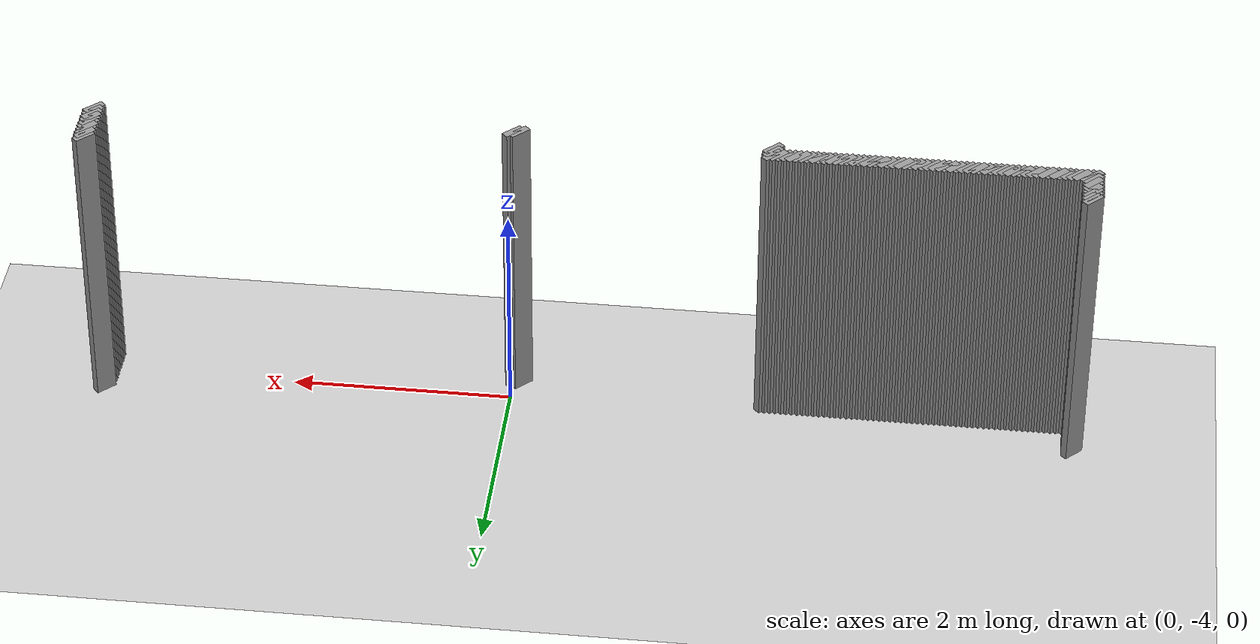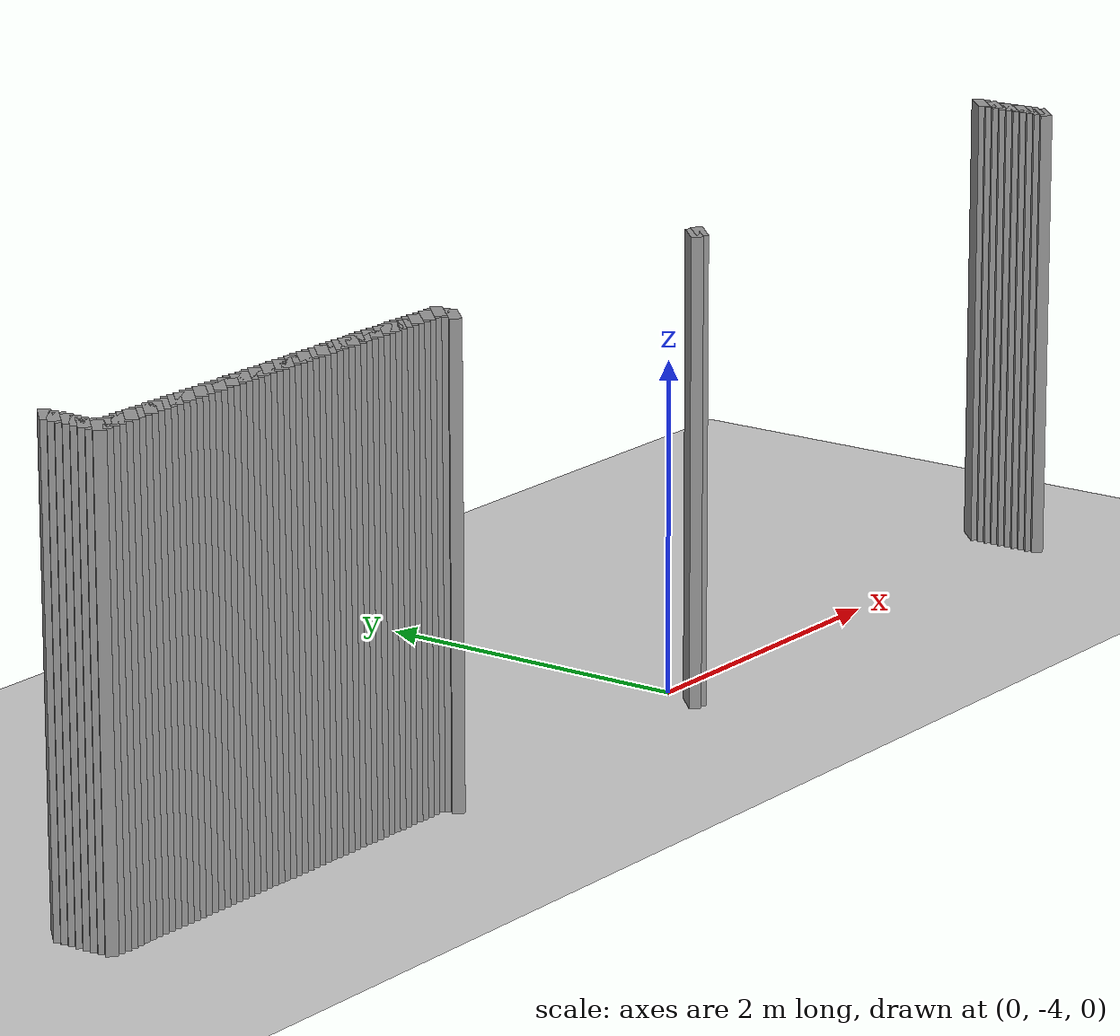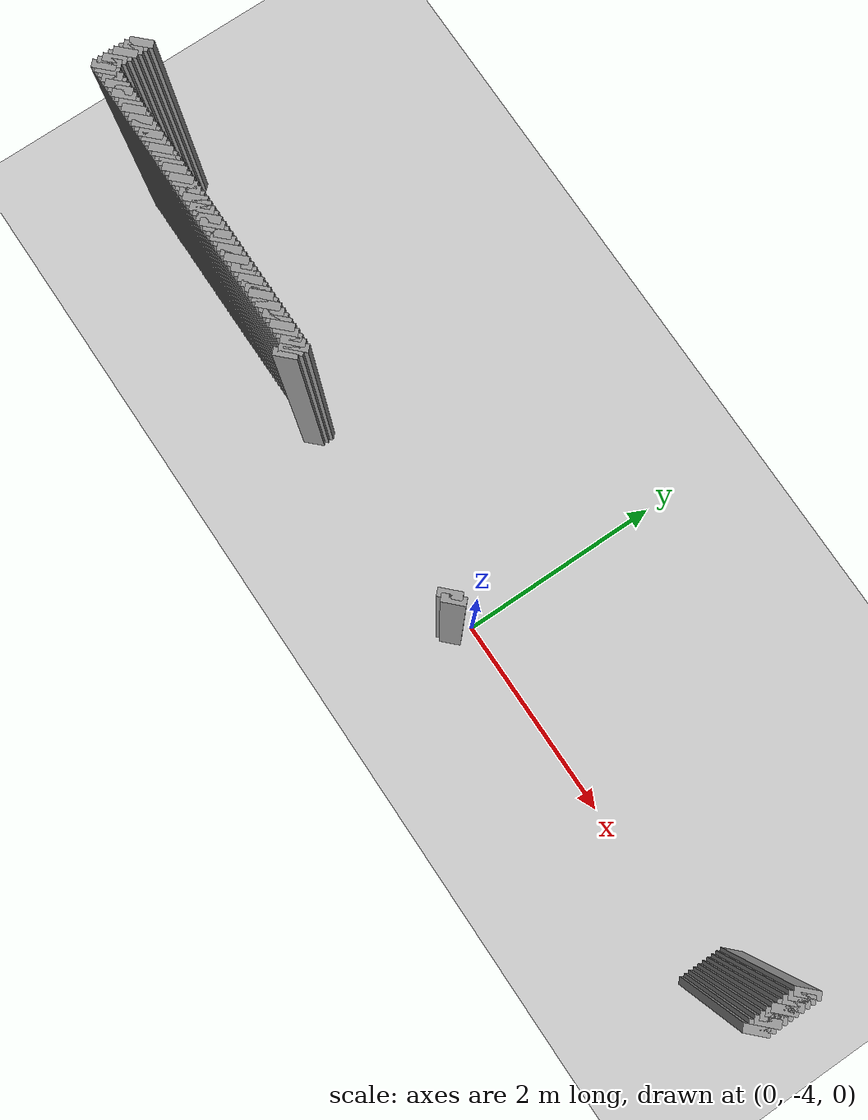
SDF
<sdf version="1.5">
 <world name="default">
  <include><uri>model://ground_plane</uri></include>
  <include><uri>model://sun</uri></include>
  <model name="grey_wall_1178">
   <static>1</static>
   <link name="link">
    <pose>3.725 -3.725  1.4 0 0 -0.785398163397</pose>
    <collision name="collision"><geometry><box><size>0.0707106781187 .2  2.8</size></box></geometry></collision>
    <visual name="visual">
     <cast_shadows>0</cast_shadows>
     <geometry><box><size>0.0707106781187 .2  2.8</size></box></geometry>
     <material>
      <script>
       <uri>model://grey_wall/materials/scripts</uri>
       <uri>model://grey_wall/materials/textures</uri>
       <name>vrc/grey_wall</name>
      </script>
     </material>
    </visual>
   </link>
  </model>
  <model name="grey_wall_1179">
   <static>1</static>
   <link name="link">
    <pose>-5.125 -3.775  1.4 0 0 -0.785398163397</pose>
    <collision name="collision"><geometry><box><size>0.0707106781187 .2  2.8</size></box></geometry></collision>
    <visual name="visual">
     <cast_shadows>0</cast_shadows>
     <geometry><box><size>0.0707106781187 .2  2.8</size></box></geometry>
     <material>
      <script>
       <uri>model://grey_wall/materials/scripts</uri>
       <uri>model://grey_wall/materials/textures</uri>
       <name>vrc/grey_wall</name>
      </script>
     </material>
    </visual>
   </link>
  </model>
  <model name="grey_wall_1180">
   <static>1</static>
   <link name="link">
    <pose>3.725 -3.775  1.4 0 0 -0.785398163397</pose>
    <collision name="collision"><geometry><box><size>0.0707106781187 .2  2.8</size></box></geometry></collision>
    <visual name="visual">
     <cast_shadows>0</cast_shadows>
     <geometry><box><size>0.0707106781187 .2  2.8</size></box></geometry>
     <material>
      <script>
       <uri>model://grey_wall/materials/scripts</uri>
       <uri>model://grey_wall/materials/textures</uri>
       <name>vrc/grey_wall</name>
      </script>
     </material>
    </visual>
   </link>
  </model>
  <model name="grey_wall_1181">
   <static>1</static>
   <link name="link">
    <pose>-5.125 -3.825  1.4 0 0 -0.785398163397</pose>
    <collision name="collision"><geometry><box><size>0.0707106781187 .2  2.8</size></box></geometry></collision>
    <visual name="visual">
     <cast_shadows>0</cast_shadows>
     <geometry><box><size>0.0707106781187 .2  2.8</size></box></geometry>
     <material>
      <script>
       <uri>model://grey_wall/materials/scripts</uri>
       <uri>model://grey_wall/materials/textures</uri>
       <name>vrc/grey_wall</name>
      </script>
     </material>
    </visual>
   </link>
  </model>
  <model name="grey_wall_1182">
   <static>1</static>
   <link name="link">
    <pose>3.725 -3.825  1.4 0 0 -0.785398163397</pose>
    <collision name="collision"><geometry><box><size>0.0707106781187 .2  2.8</size></box></geometry></collision>
    <visual name="visual">
     <cast_shadows>0</cast_shadows>
     <geometry><box><size>0.0707106781187 .2  2.8</size></box></geometry>
     <material>
      <script>
       <uri>model://grey_wall/materials/scripts</uri>
       <uri>model://grey_wall/materials/textures</uri>
       <name>vrc/grey_wall</name>
      </script>
     </material>
    </visual>
   </link>
  </model>
  <model name="grey_wall_1183">
   <static>1</static>
   <link name="link">
    <pose>-5.125 -3.875  1.4 0 0 -0.785398163397</pose>
    <collision name="collision"><geometry><box><size>0.0707106781187 .2  2.8</size></box></geometry></collision>
    <visual name="visual">
     <cast_shadows>0</cast_shadows>
     <geometry><box><size>0.0707106781187 .2  2.8</size></box></geometry>
     <material>
      <script>
       <uri>model://grey_wall/materials/scripts</uri>
       <uri>model://grey_wall/materials/textures</uri>
       <name>vrc/grey_wall</name>
      </script>
     </material>
    </visual>
   </link>
  </model>
  <model name="grey_wall_1184">
   <static>1</static>
   <link name="link">
    <pose>3.725 -3.875  1.4 0 0 -0.785398163397</pose>
    <collision name="collision"><geometry><box><size>0.0707106781187 .2  2.8</size></box></geometry></collision>
    <visual name="visual">
     <cast_shadows>0</cast_shadows>
     <geometry><box><size>0.0707106781187 .2  2.8</size></box></geometry>
     <material>
      <script>
       <uri>model://grey_wall/materials/scripts</uri>
       <uri>model://grey_wall/materials/textures</uri>
       <name>vrc/grey_wall</name>
      </script>
     </material>
    </visual>
   </link>
  </model>
  <model name="grey_wall_1185">
   <static>1</static>
   <link name="link">
    <pose>-5.125 -3.925  1.4 0 0 -0.785398163397</pose>
    <collision name="collision"><geometry><box><size>0.0707106781187 .2  2.8</size></box></geometry></collision>
    <visual name="visual">
     <cast_shadows>0</cast_shadows>
     <geometry><box><size>0.0707106781187 .2  2.8</size></box></geometry>
     <material>
      <script>
       <uri>model://grey_wall/materials/scripts</uri>
       <uri>model://grey_wall/materials/textures</uri>
       <name>vrc/grey_wall</name>
      </script>
     </material>
    </visual>
   </link>
  </model>
  <model name="grey_wall_1186">
   <static>1</static>
   <link name="link">
    <pose>3.725 -3.925  1.4 0 0 -0.785398163397</pose>
    <collision name="collision"><geometry><box><size>0.0707106781187 .2  2.8</size></box></geometry></collision>
    <visual name="visual">
     <cast_shadows>0</cast_shadows>
     <geometry><box><size>0.0707106781187 .2  2.8</size></box></geometry>
     <material>
      <script>
       <uri>model://grey_wall/materials/scripts</uri>
       <uri>model://grey_wall/materials/textures</uri>
       <name>vrc/grey_wall</name>
      </script>
     </material>
    </visual>
   </link>
  </model>
  <model name="grey_wall_1187">
   <static>1</static>
   <link name="link">
    <pose>-5.125 -3.975  1.4 0 0 -0.785398163397</pose>
    <collision name="collision"><geometry><box><size>0.0707106781187 .2  2.8</size></box></geometry></collision>
    <visual name="visual">
     <cast_shadows>0</cast_shadows>
     <geometry><box><size>0.0707106781187 .2  2.8</size></box></geometry>
     <material>
      <script>
       <uri>model://grey_wall/materials/scripts</uri>
       <uri>model://grey_wall/materials/textures</uri>
       <name>vrc/grey_wall</name>
      </script>
     </material>
    </visual>
   </link>
  </model>
  <model name="grey_wall_1188">
   <static>1</static>
   <link name="link">
    <pose>3.725 -3.975  1.4 0 0 -0.785398163397</pose>
    <collision name="collision"><geometry><box><size>0.0707106781187 .2  2.8</size></box></geometry></collision>
    <visual name="visual">
     <cast_shadows>0</cast_shadows>
     <geometry><box><size>0.0707106781187 .2  2.8</size></box></geometry>
     <material>
      <script>
       <uri>model://grey_wall/materials/scripts</uri>
       <uri>model://grey_wall/materials/textures</uri>
       <name>vrc/grey_wall</name>
      </script>
     </material>
    </visual>
   </link>
  </model>
  <model name="grey_wall_1189">
   <static>1</static>
   <link name="link">
    <pose>-5.125 -4.025  1.4 0 0 -0.785398163397</pose>
    <collision name="collision"><geometry><box><size>0.0707106781187 .2  2.8</size></box></geometry></collision>
    <visual name="visual">
     <cast_shadows>0</cast_shadows>
     <geometry><box><size>0.0707106781187 .2  2.8</size></box></geometry>
     <material>
      <script>
       <uri>model://grey_wall/materials/scripts</uri>
       <uri>model://grey_wall/materials/textures</uri>
       <name>vrc/grey_wall</name>
      </script>
     </material>
    </visual>
   </link>
  </model>
  <model name="grey_wall_1190">
   <static>1</static>
   <link name="link">
    <pose>3.725 -4.025  1.4 0 0 -0.785398163397</pose>
    <collision name="collision"><geometry><box><size>0.0707106781187 .2  2.8</size></box></geometry></collision>
    <visual name="visual">
     <cast_shadows>0</cast_shadows>
     <geometry><box><size>0.0707106781187 .2  2.8</size></box></geometry>
     <material>
      <script>
       <uri>model://grey_wall/materials/scripts</uri>
       <uri>model://grey_wall/materials/textures</uri>
       <name>vrc/grey_wall</name>
      </script>
     </material>
    </visual>
   </link>
  </model>
  <model name="grey_wall_1191">
   <static>1</static>
   <link name="link">
    <pose>-5.125 -4.075  1.4 0 0 -0.785398163397</pose>
    <collision name="collision"><geometry><box><size>0.0707106781187 .2  2.8</size></box></geometry></collision>
    <visual name="visual">
     <cast_shadows>0</cast_shadows>
     <geometry><box><size>0.0707106781187 .2  2.8</size></box></geometry>
     <material>
      <script>
       <uri>model://grey_wall/materials/scripts</uri>
       <uri>model://grey_wall/materials/textures</uri>
       <name>vrc/grey_wall</name>
      </script>
     </material>
    </visual>
   </link>
  </model>
  <model name="grey_wall_1192">
   <static>1</static>
   <link name="link">
    <pose>3.725 -4.075  1.4 0 0 -0.785398163397</pose>
    <collision name="collision"><geometry><box><size>0.0707106781187 .2  2.8</size></box></geometry></collision>
    <visual name="visual">
     <cast_shadows>0</cast_shadows>
     <geometry><box><size>0.0707106781187 .2  2.8</size></box></geometry>
     <material>
      <script>
       <uri>model://grey_wall/materials/scripts</uri>
       <uri>model://grey_wall/materials/textures</uri>
       <name>vrc/grey_wall</name>
      </script>
     </material>
    </visual>
   </link>
  </model>
  <model name="grey_wall_1193">
   <static>1</static>
   <link name="link">
    <pose>-5.125 -4.125  1.4 0 0 -0.785398163397</pose>
    <collision name="collision"><geometry><box><size>0.0707106781187 .2  2.8</size></box></geometry></collision>
    <visual name="visual">
     <cast_shadows>0</cast_shadows>
     <geometry><box><size>0.0707106781187 .2  2.8</size></box></geometry>
     <material>
      <script>
       <uri>model://grey_wall/materials/scripts</uri>
       <uri>model://grey_wall/materials/textures</uri>
       <name>vrc/grey_wall</name>
      </script>
     </material>
    </visual>
   </link>
  </model>
  <model name="grey_wall_1194">
   <static>1</static>
   <link name="link">
    <pose>-5.075 -4.125  1.4 0 0 -0.785398163397</pose>
    <collision name="collision"><geometry><box><size>0.0707106781187 .2  2.8</size></box></geometry></collision>
    <visual name="visual">
     <cast_shadows>0</cast_shadows>
     <geometry><box><size>0.0707106781187 .2  2.8</size></box></geometry>
     <material>
      <script>
       <uri>model://grey_wall/materials/scripts</uri>
       <uri>model://grey_wall/materials/textures</uri>
       <name>vrc/grey_wall</name>
      </script>
     </material>
    </visual>
   </link>
  </model>
  <model name="grey_wall_1195">
   <static>1</static>
   <link name="link">
    <pose>-5.025 -4.125  1.4 0 0 -0.785398163397</pose>
    <collision name="collision"><geometry><box><size>0.0707106781187 .2  2.8</size></box></geometry></collision>
    <visual name="visual">
     <cast_shadows>0</cast_shadows>
     <geometry><box><size>0.0707106781187 .2  2.8</size></box></geometry>
     <material>
      <script>
       <uri>model://grey_wall/materials/scripts</uri>
       <uri>model://grey_wall/materials/textures</uri>
       <name>vrc/grey_wall</name>
      </script>
     </material>
    </visual>
   </link>
  </model>
  <model name="grey_wall_1196">
   <static>1</static>
   <link name="link">
    <pose>-4.975 -4.125  1.4 0 0 -0.785398163397</pose>
    <collision name="collision"><geometry><box><size>0.0707106781187 .2  2.8</size></box></geometry></collision>
    <visual name="visual">
     <cast_shadows>0</cast_shadows>
     <geometry><box><size>0.0707106781187 .2  2.8</size></box></geometry>
     <material>
      <script>
       <uri>model://grey_wall/materials/scripts</uri>
       <uri>model://grey_wall/materials/textures</uri>
       <name>vrc/grey_wall</name>
      </script>
     </material>
    </visual>
   </link>
  </model>
  <model name="grey_wall_1197">
   <static>1</static>
   <link name="link">
    <pose>-4.925 -4.125  1.4 0 0 -0.785398163397</pose>
    <collision name="collision"><geometry><box><size>0.0707106781187 .2  2.8</size></box></geometry></collision>
    <visual name="visual">
     <cast_shadows>0</cast_shadows>
     <geometry><box><size>0.0707106781187 .2  2.8</size></box></geometry>
     <material>
      <script>
       <uri>model://grey_wall/materials/scripts</uri>
       <uri>model://grey_wall/materials/textures</uri>
       <name>vrc/grey_wall</name>
      </script>
     </material>
    </visual>
   </link>
  </model>
  <model name="grey_wall_1198">
   <static>1</static>
   <link name="link">
    <pose>-4.875 -4.125  1.4 0 0 -0.785398163397</pose>
    <collision name="collision"><geometry><box><size>0.0707106781187 .2  2.8</size></box></geometry></collision>
    <visual name="visual">
     <cast_shadows>0</cast_shadows>
     <geometry><box><size>0.0707106781187 .2  2.8</size></box></geometry>
     <material>
      <script>
       <uri>model://grey_wall/materials/scripts</uri>
       <uri>model://grey_wall/materials/textures</uri>
       <name>vrc/grey_wall</name>
      </script>
     </material>
    </visual>
   </link>
  </model>
  <model name="grey_wall_1199">
   <static>1</static>
   <link name="link">
    <pose>-4.825 -4.125  1.4 0 0 -0.785398163397</pose>
    <collision name="collision"><geometry><box><size>0.0707106781187 .2  2.8</size></box></geometry></collision>
    <visual name="visual">
     <cast_shadows>0</cast_shadows>
     <geometry><box><size>0.0707106781187 .2  2.8</size></box></geometry>
     <material>
      <script>
       <uri>model://grey_wall/materials/scripts</uri>
       <uri>model://grey_wall/materials/textures</uri>
       <name>vrc/grey_wall</name>
      </script>
     </material>
    </visual>
   </link>
  </model>
  <model name="grey_wall_1200">
   <static>1</static>
   <link name="link">
    <pose>-4.775 -4.125  1.4 0 0 -0.785398163397</pose>
    <collision name="collision"><geometry><box><size>0.0707106781187 .2  2.8</size></box></geometry></collision>
    <visual name="visual">
     <cast_shadows>0</cast_shadows>
     <geometry><box><size>0.0707106781187 .2  2.8</size></box></geometry>
     <material>
      <script>
       <uri>model://grey_wall/materials/scripts</uri>
       <uri>model://grey_wall/materials/textures</uri>
       <name>vrc/grey_wall</name>
      </script>
     </material>
    </visual>
   </link>
  </model>
  <model name="grey_wall_1201">
   <static>1</static>
   <link name="link">
    <pose>-4.725 -4.125  1.4 0 0 -0.785398163397</pose>
    <collision name="collision"><geometry><box><size>0.0707106781187 .2  2.8</size></box></geometry></collision>
    <visual name="visual">
     <cast_shadows>0</cast_shadows>
     <geometry><box><size>0.0707106781187 .2  2.8</size></box></geometry>
     <material>
      <script>
       <uri>model://grey_wall/materials/scripts</uri>
       <uri>model://grey_wall/materials/textures</uri>
       <name>vrc/grey_wall</name>
      </script>
     </material>
    </visual>
   </link>
  </model>
  <model name="grey_wall_1202">
   <static>1</static>
   <link name="link">
    <pose>-4.675 -4.125  1.4 0 0 -0.785398163397</pose>
    <collision name="collision"><geometry><box><size>0.0707106781187 .2  2.8</size></box></geometry></collision>
    <visual name="visual">
     <cast_shadows>0</cast_shadows>
     <geometry><box><size>0.0707106781187 .2  2.8</size></box></geometry>
     <material>
      <script>
       <uri>model://grey_wall/materials/scripts</uri>
       <uri>model://grey_wall/materials/textures</uri>
       <name>vrc/grey_wall</name>
      </script>
     </material>
    </visual>
   </link>
  </model>
  <model name="grey_wall_1203">
   <static>1</static>
   <link name="link">
    <pose>-4.625 -4.125  1.4 0 0 -0.785398163397</pose>
    <collision name="collision"><geometry><box><size>0.0707106781187 .2  2.8</size></box></geometry></collision>
    <visual name="visual">
     <cast_shadows>0</cast_shadows>
     <geometry><box><size>0.0707106781187 .2  2.8</size></box></geometry>
     <material>
      <script>
       <uri>model://grey_wall/materials/scripts</uri>
       <uri>model://grey_wall/materials/textures</uri>
       <name>vrc/grey_wall</name>
      </script>
     </material>
    </visual>
   </link>
  </model>
  <model name="grey_wall_1204">
   <static>1</static>
   <link name="link">
    <pose>-4.575 -4.125  1.4 0 0 -0.785398163397</pose>
    <collision name="collision"><geometry><box><size>0.0707106781187 .2  2.8</size></box></geometry></collision>
    <visual name="visual">
     <cast_shadows>0</cast_shadows>
     <geometry><box><size>0.0707106781187 .2  2.8</size></box></geometry>
     <material>
      <script>
       <uri>model://grey_wall/materials/scripts</uri>
       <uri>model://grey_wall/materials/textures</uri>
       <name>vrc/grey_wall</name>
      </script>
     </material>
    </visual>
   </link>
  </model>
  <model name="grey_wall_1205">
   <static>1</static>
   <link name="link">
    <pose>-4.525 -4.125  1.4 0 0 -0.785398163397</pose>
    <collision name="collision"><geometry><box><size>0.0707106781187 .2  2.8</size></box></geometry></collision>
    <visual name="visual">
     <cast_shadows>0</cast_shadows>
     <geometry><box><size>0.0707106781187 .2  2.8</size></box></geometry>
     <material>
      <script>
       <uri>model://grey_wall/materials/scripts</uri>
       <uri>model://grey_wall/materials/textures</uri>
       <name>vrc/grey_wall</name>
      </script>
     </material>
    </visual>
   </link>
  </model>
  <model name="grey_wall_1206">
   <static>1</static>
   <link name="link">
    <pose>-4.475 -4.125  1.4 0 0 -0.785398163397</pose>
    <collision name="collision"><geometry><box><size>0.0707106781187 .2  2.8</size></box></geometry></collision>
    <visual name="visual">
     <cast_shadows>0</cast_shadows>
     <geometry><box><size>0.0707106781187 .2  2.8</size></box></geometry>
     <material>
      <script>
       <uri>model://grey_wall/materials/scripts</uri>
       <uri>model://grey_wall/materials/textures</uri>
       <name>vrc/grey_wall</name>
      </script>
     </material>
    </visual>
   </link>
  </model>
  <model name="grey_wall_1207">
   <static>1</static>
   <link name="link">
    <pose>-4.425 -4.125  1.4 0 0 -0.785398163397</pose>
    <collision name="collision"><geometry><box><size>0.0707106781187 .2  2.8</size></box></geometry></collision>
    <visual name="visual">
     <cast_shadows>0</cast_shadows>
     <geometry><box><size>0.0707106781187 .2  2.8</size></box></geometry>
     <material>
      <script>
       <uri>model://grey_wall/materials/scripts</uri>
       <uri>model://grey_wall/materials/textures</uri>
       <name>vrc/grey_wall</name>
      </script>
     </material>
    </visual>
   </link>
  </model>
  <model name="grey_wall_1208">
   <static>1</static>
   <link name="link">
    <pose>-4.375 -4.125  1.4 0 0 -0.785398163397</pose>
    <collision name="collision"><geometry><box><size>0.0707106781187 .2  2.8</size></box></geometry></collision>
    <visual name="visual">
     <cast_shadows>0</cast_shadows>
     <geometry><box><size>0.0707106781187 .2  2.8</size></box></geometry>
     <material>
      <script>
       <uri>model://grey_wall/materials/scripts</uri>
       <uri>model://grey_wall/materials/textures</uri>
       <name>vrc/grey_wall</name>
      </script>
     </material>
    </visual>
   </link>
  </model>
  <model name="grey_wall_1209">
   <static>1</static>
   <link name="link">
    <pose>-4.325 -4.125  1.4 0 0 -0.785398163397</pose>
    <collision name="collision"><geometry><box><size>0.0707106781187 .2  2.8</size></box></geometry></collision>
    <visual name="visual">
     <cast_shadows>0</cast_shadows>
     <geometry><box><size>0.0707106781187 .2  2.8</size></box></geometry>
     <material>
      <script>
       <uri>model://grey_wall/materials/scripts</uri>
       <uri>model://grey_wall/materials/textures</uri>
       <name>vrc/grey_wall</name>
      </script>
     </material>
    </visual>
   </link>
  </model>
  <model name="grey_wall_1210">
   <static>1</static>
   <link name="link">
    <pose>-4.275 -4.125  1.4 0 0 -0.785398163397</pose>
    <collision name="collision"><geometry><box><size>0.0707106781187 .2  2.8</size></box></geometry></collision>
    <visual name="visual">
     <cast_shadows>0</cast_shadows>
     <geometry><box><size>0.0707106781187 .2  2.8</size></box></geometry>
     <material>
      <script>
       <uri>model://grey_wall/materials/scripts</uri>
       <uri>model://grey_wall/materials/textures</uri>
       <name>vrc/grey_wall</name>
      </script>
     </material>
    </visual>
   </link>
  </model>
  <model name="grey_wall_1211">
   <static>1</static>
   <link name="link">
    <pose>-4.225 -4.125  1.4 0 0 -0.785398163397</pose>
    <collision name="collision"><geometry><box><size>0.0707106781187 .2  2.8</size></box></geometry></collision>
    <visual name="visual">
     <cast_shadows>0</cast_shadows>
     <geometry><box><size>0.0707106781187 .2  2.8</size></box></geometry>
     <material>
      <script>
       <uri>model://grey_wall/materials/scripts</uri>
       <uri>model://grey_wall/materials/textures</uri>
       <name>vrc/grey_wall</name>
      </script>
     </material>
    </visual>
   </link>
  </model>
  <model name="grey_wall_1212">
   <static>1</static>
   <link name="link">
    <pose>-4.175 -4.125  1.4 0 0 -0.785398163397</pose>
    <collision name="collision"><geometry><box><size>0.0707106781187 .2  2.8</size></box></geometry></collision>
    <visual name="visual">
     <cast_shadows>0</cast_shadows>
     <geometry><box><size>0.0707106781187 .2  2.8</size></box></geometry>
     <material>
      <script>
       <uri>model://grey_wall/materials/scripts</uri>
       <uri>model://grey_wall/materials/textures</uri>
       <name>vrc/grey_wall</name>
      </script>
     </material>
    </visual>
   </link>
  </model>
  <model name="grey_wall_1213">
   <static>1</static>
   <link name="link">
    <pose>-4.125 -4.125  1.4 0 0 -0.785398163397</pose>
    <collision name="collision"><geometry><box><size>0.0707106781187 .2  2.8</size></box></geometry></collision>
    <visual name="visual">
     <cast_shadows>0</cast_shadows>
     <geometry><box><size>0.0707106781187 .2  2.8</size></box></geometry>
     <material>
      <script>
       <uri>model://grey_wall/materials/scripts</uri>
       <uri>model://grey_wall/materials/textures</uri>
       <name>vrc/grey_wall</name>
      </script>
     </material>
    </visual>
   </link>
  </model>
  <model name="grey_wall_1214">
   <static>1</static>
   <link name="link">
    <pose>-4.075 -4.125  1.4 0 0 -0.785398163397</pose>
    <collision name="collision"><geometry><box><size>0.0707106781187 .2  2.8</size></box></geometry></collision>
    <visual name="visual">
     <cast_shadows>0</cast_shadows>
     <geometry><box><size>0.0707106781187 .2  2.8</size></box></geometry>
     <material>
      <script>
       <uri>model://grey_wall/materials/scripts</uri>
       <uri>model://grey_wall/materials/textures</uri>
       <name>vrc/grey_wall</name>
      </script>
     </material>
    </visual>
   </link>
  </model>
  <model name="grey_wall_1215">
   <static>1</static>
   <link name="link">
    <pose>-4.025 -4.125  1.4 0 0 -0.785398163397</pose>
    <collision name="collision"><geometry><box><size>0.0707106781187 .2  2.8</size></box></geometry></collision>
    <visual name="visual">
     <cast_shadows>0</cast_shadows>
     <geometry><box><size>0.0707106781187 .2  2.8</size></box></geometry>
     <material>
      <script>
       <uri>model://grey_wall/materials/scripts</uri>
       <uri>model://grey_wall/materials/textures</uri>
       <name>vrc/grey_wall</name>
      </script>
     </material>
    </visual>
   </link>
  </model>
  <model name="grey_wall_1216">
   <static>1</static>
   <link name="link">
    <pose>-3.975 -4.125  1.4 0 0 -0.785398163397</pose>
    <collision name="collision"><geometry><box><size>0.0707106781187 .2  2.8</size></box></geometry></collision>
    <visual name="visual">
     <cast_shadows>0</cast_shadows>
     <geometry><box><size>0.0707106781187 .2  2.8</size></box></geometry>
     <material>
      <script>
       <uri>model://grey_wall/materials/scripts</uri>
       <uri>model://grey_wall/materials/textures</uri>
       <name>vrc/grey_wall</name>
      </script>
     </material>
    </visual>
   </link>
  </model>
  <model name="grey_wall_1217">
   <static>1</static>
   <link name="link">
    <pose>-3.925 -4.125  1.4 0 0 -0.785398163397</pose>
    <collision name="collision"><geometry><box><size>0.0707106781187 .2  2.8</size></box></geometry></collision>
    <visual name="visual">
     <cast_shadows>0</cast_shadows>
     <geometry><box><size>0.0707106781187 .2  2.8</size></box></geometry>
     <material>
      <script>
       <uri>model://grey_wall/materials/scripts</uri>
       <uri>model://grey_wall/materials/textures</uri>
       <name>vrc/grey_wall</name>
      </script>
     </material>
    </visual>
   </link>
  </model>
  <model name="grey_wall_1218">
   <static>1</static>
   <link name="link">
    <pose>-3.875 -4.125  1.4 0 0 -0.785398163397</pose>
    <collision name="collision"><geometry><box><size>0.0707106781187 .2  2.8</size></box></geometry></collision>
    <visual name="visual">
     <cast_shadows>0</cast_shadows>
     <geometry><box><size>0.0707106781187 .2  2.8</size></box></geometry>
     <material>
      <script>
       <uri>model://grey_wall/materials/scripts</uri>
       <uri>model://grey_wall/materials/textures</uri>
       <name>vrc/grey_wall</name>
      </script>
     </material>
    </visual>
   </link>
  </model>
  <model name="grey_wall_1219">
   <static>1</static>
   <link name="link">
    <pose>-3.825 -4.125  1.4 0 0 -0.785398163397</pose>
    <collision name="collision"><geometry><box><size>0.0707106781187 .2  2.8</size></box></geometry></collision>
    <visual name="visual">
     <cast_shadows>0</cast_shadows>
     <geometry><box><size>0.0707106781187 .2  2.8</size></box></geometry>
     <material>
      <script>
       <uri>model://grey_wall/materials/scripts</uri>
       <uri>model://grey_wall/materials/textures</uri>
       <name>vrc/grey_wall</name>
      </script>
     </material>
    </visual>
   </link>
  </model>
  <model name="grey_wall_1220">
   <static>1</static>
   <link name="link">
    <pose>-3.775 -4.125  1.4 0 0 -0.785398163397</pose>
    <collision name="collision"><geometry><box><size>0.0707106781187 .2  2.8</size></box></geometry></collision>
    <visual name="visual">
     <cast_shadows>0</cast_shadows>
     <geometry><box><size>0.0707106781187 .2  2.8</size></box></geometry>
     <material>
      <script>
       <uri>model://grey_wall/materials/scripts</uri>
       <uri>model://grey_wall/materials/textures</uri>
       <name>vrc/grey_wall</name>
      </script>
     </material>
    </visual>
   </link>
  </model>
  <model name="grey_wall_1221">
   <static>1</static>
   <link name="link">
    <pose>-3.725 -4.125  1.4 0 0 -0.785398163397</pose>
    <collision name="collision"><geometry><box><size>0.0707106781187 .2  2.8</size></box></geometry></collision>
    <visual name="visual">
     <cast_shadows>0</cast_shadows>
     <geometry><box><size>0.0707106781187 .2  2.8</size></box></geometry>
     <material>
      <script>
       <uri>model://grey_wall/materials/scripts</uri>
       <uri>model://grey_wall/materials/textures</uri>
       <name>vrc/grey_wall</name>
      </script>
     </material>
    </visual>
   </link>
  </model>
  <model name="grey_wall_1222">
   <static>1</static>
   <link name="link">
    <pose>-3.675 -4.125  1.4 0 0 -0.785398163397</pose>
    <collision name="collision"><geometry><box><size>0.0707106781187 .2  2.8</size></box></geometry></collision>
    <visual name="visual">
     <cast_shadows>0</cast_shadows>
     <geometry><box><size>0.0707106781187 .2  2.8</size></box></geometry>
     <material>
      <script>
       <uri>model://grey_wall/materials/scripts</uri>
       <uri>model://grey_wall/materials/textures</uri>
       <name>vrc/grey_wall</name>
      </script>
     </material>
    </visual>
   </link>
  </model>
  <model name="grey_wall_1223">
   <static>1</static>
   <link name="link">
    <pose>-3.625 -4.125  1.4 0 0 -0.785398163397</pose>
    <collision name="collision"><geometry><box><size>0.0707106781187 .2  2.8</size></box></geometry></collision>
    <visual name="visual">
     <cast_shadows>0</cast_shadows>
     <geometry><box><size>0.0707106781187 .2  2.8</size></box></geometry>
     <material>
      <script>
       <uri>model://grey_wall/materials/scripts</uri>
       <uri>model://grey_wall/materials/textures</uri>
       <name>vrc/grey_wall</name>
      </script>
     </material>
    </visual>
   </link>
  </model>
  <model name="grey_wall_1224">
   <static>1</static>
   <link name="link">
    <pose>-3.575 -4.125  1.4 0 0 -0.785398163397</pose>
    <collision name="collision"><geometry><box><size>0.0707106781187 .2  2.8</size></box></geometry></collision>
    <visual name="visual">
     <cast_shadows>0</cast_shadows>
     <geometry><box><size>0.0707106781187 .2  2.8</size></box></geometry>
     <material>
      <script>
       <uri>model://grey_wall/materials/scripts</uri>
       <uri>model://grey_wall/materials/textures</uri>
       <name>vrc/grey_wall</name>
      </script>
     </material>
    </visual>
   </link>
  </model>
  <model name="grey_wall_1225">
   <static>1</static>
   <link name="link">
    <pose>-3.525 -4.125  1.4 0 0 -0.785398163397</pose>
    <collision name="collision"><geometry><box><size>0.0707106781187 .2  2.8</size></box></geometry></collision>
    <visual name="visual">
     <cast_shadows>0</cast_shadows>
     <geometry><box><size>0.0707106781187 .2  2.8</size></box></geometry>
     <material>
      <script>
       <uri>model://grey_wall/materials/scripts</uri>
       <uri>model://grey_wall/materials/textures</uri>
       <name>vrc/grey_wall</name>
      </script>
     </material>
    </visual>
   </link>
  </model>
  <model name="grey_wall_1226">
   <static>1</static>
   <link name="link">
    <pose>-3.475 -4.125  1.4 0 0 -0.785398163397</pose>
    <collision name="collision"><geometry><box><size>0.0707106781187 .2  2.8</size></box></geometry></collision>
    <visual name="visual">
     <cast_shadows>0</cast_shadows>
     <geometry><box><size>0.0707106781187 .2  2.8</size></box></geometry>
     <material>
      <script>
       <uri>model://grey_wall/materials/scripts</uri>
       <uri>model://grey_wall/materials/textures</uri>
       <name>vrc/grey_wall</name>
      </script>
     </material>
    </visual>
   </link>
  </model>
  <model name="grey_wall_1227">
   <static>1</static>
   <link name="link">
    <pose>-3.425 -4.125  1.4 0 0 -0.785398163397</pose>
    <collision name="collision"><geometry><box><size>0.0707106781187 .2  2.8</size></box></geometry></collision>
    <visual name="visual">
     <cast_shadows>0</cast_shadows>
     <geometry><box><size>0.0707106781187 .2  2.8</size></box></geometry>
     <material>
      <script>
       <uri>model://grey_wall/materials/scripts</uri>
       <uri>model://grey_wall/materials/textures</uri>
       <name>vrc/grey_wall</name>
      </script>
     </material>
    </visual>
   </link>
  </model>
  <model name="grey_wall_1228">
   <static>1</static>
   <link name="link">
    <pose>-3.375 -4.125  1.4 0 0 -0.785398163397</pose>
    <collision name="collision"><geometry><box><size>0.0707106781187 .2  2.8</size></box></geometry></collision>
    <visual name="visual">
     <cast_shadows>0</cast_shadows>
     <geometry><box><size>0.0707106781187 .2  2.8</size></box></geometry>
     <material>
      <script>
       <uri>model://grey_wall/materials/scripts</uri>
       <uri>model://grey_wall/materials/textures</uri>
       <name>vrc/grey_wall</name>
      </script>
     </material>
    </visual>
   </link>
  </model>
  <model name="grey_wall_1229">
   <static>1</static>
   <link name="link">
    <pose>-3.325 -4.125  1.4 0 0 -0.785398163397</pose>
    <collision name="collision"><geometry><box><size>0.0707106781187 .2  2.8</size></box></geometry></collision>
    <visual name="visual">
     <cast_shadows>0</cast_shadows>
     <geometry><box><size>0.0707106781187 .2  2.8</size></box></geometry>
     <material>
      <script>
       <uri>model://grey_wall/materials/scripts</uri>
       <uri>model://grey_wall/materials/textures</uri>
       <name>vrc/grey_wall</name>
      </script>
     </material>
    </visual>
   </link>
  </model>
  <model name="grey_wall_1230">
   <static>1</static>
   <link name="link">
    <pose>-3.275 -4.125  1.4 0 0 -0.785398163397</pose>
    <collision name="collision"><geometry><box><size>0.0707106781187 .2  2.8</size></box></geometry></collision>
    <visual name="visual">
     <cast_shadows>0</cast_shadows>
     <geometry><box><size>0.0707106781187 .2  2.8</size></box></geometry>
     <material>
      <script>
       <uri>model://grey_wall/materials/scripts</uri>
       <uri>model://grey_wall/materials/textures</uri>
       <name>vrc/grey_wall</name>
      </script>
     </material>
    </visual>
   </link>
  </model>
  <model name="grey_wall_1231">
   <static>1</static>
   <link name="link">
    <pose>-3.225 -4.125  1.4 0 0 -0.785398163397</pose>
    <collision name="collision"><geometry><box><size>0.0707106781187 .2  2.8</size></box></geometry></collision>
    <visual name="visual">
     <cast_shadows>0</cast_shadows>
     <geometry><box><size>0.0707106781187 .2  2.8</size></box></geometry>
     <material>
      <script>
       <uri>model://grey_wall/materials/scripts</uri>
       <uri>model://grey_wall/materials/textures</uri>
       <name>vrc/grey_wall</name>
      </script>
     </material>
    </visual>
   </link>
  </model>
  <model name="grey_wall_1232">
   <static>1</static>
   <link name="link">
    <pose>-3.175 -4.125  1.4 0 0 -0.785398163397</pose>
    <collision name="collision"><geometry><box><size>0.0707106781187 .2  2.8</size></box></geometry></collision>
    <visual name="visual">
     <cast_shadows>0</cast_shadows>
     <geometry><box><size>0.0707106781187 .2  2.8</size></box></geometry>
     <material>
      <script>
       <uri>model://grey_wall/materials/scripts</uri>
       <uri>model://grey_wall/materials/textures</uri>
       <name>vrc/grey_wall</name>
      </script>
     </material>
    </visual>
   </link>
  </model>
  <model name="grey_wall_1233">
   <static>1</static>
   <link name="link">
    <pose>-3.125 -4.125  1.4 0 0 -0.785398163397</pose>
    <collision name="collision"><geometry><box><size>0.0707106781187 .2  2.8</size></box></geometry></collision>
    <visual name="visual">
     <cast_shadows>0</cast_shadows>
     <geometry><box><size>0.0707106781187 .2  2.8</size></box></geometry>
     <material>
      <script>
       <uri>model://grey_wall/materials/scripts</uri>
       <uri>model://grey_wall/materials/textures</uri>
       <name>vrc/grey_wall</name>
      </script>
     </material>
    </visual>
   </link>
  </model>
  <model name="grey_wall_1234">
   <static>1</static>
   <link name="link">
    <pose>-3.075 -4.125  1.4 0 0 -0.785398163397</pose>
    <collision name="collision"><geometry><box><size>0.0707106781187 .2  2.8</size></box></geometry></collision>
    <visual name="visual">
     <cast_shadows>0</cast_shadows>
     <geometry><box><size>0.0707106781187 .2  2.8</size></box></geometry>
     <material>
      <script>
       <uri>model://grey_wall/materials/scripts</uri>
       <uri>model://grey_wall/materials/textures</uri>
       <name>vrc/grey_wall</name>
      </script>
     </material>
    </visual>
   </link>
  </model>
  <model name="grey_wall_1235">
   <static>1</static>
   <link name="link">
    <pose>-3.025 -4.125  1.4 0 0 -0.785398163397</pose>
    <collision name="collision"><geometry><box><size>0.0707106781187 .2  2.8</size></box></geometry></collision>
    <visual name="visual">
     <cast_shadows>0</cast_shadows>
     <geometry><box><size>0.0707106781187 .2  2.8</size></box></geometry>
     <material>
      <script>
       <uri>model://grey_wall/materials/scripts</uri>
       <uri>model://grey_wall/materials/textures</uri>
       <name>vrc/grey_wall</name>
      </script>
     </material>
    </visual>
   </link>
  </model>
  <model name="grey_wall_1236">
   <static>1</static>
   <link name="link">
    <pose>-2.975 -4.125  1.4 0 0 -0.785398163397</pose>
    <collision name="collision"><geometry><box><size>0.0707106781187 .2  2.8</size></box></geometry></collision>
    <visual name="visual">
     <cast_shadows>0</cast_shadows>
     <geometry><box><size>0.0707106781187 .2  2.8</size></box></geometry>
     <material>
      <script>
       <uri>model://grey_wall/materials/scripts</uri>
       <uri>model://grey_wall/materials/textures</uri>
       <name>vrc/grey_wall</name>
      </script>
     </material>
    </visual>
   </link>
  </model>
  <model name="grey_wall_1237">
   <static>1</static>
   <link name="link">
    <pose>-2.925 -4.125  1.4 0 0 -0.785398163397</pose>
    <collision name="collision"><geometry><box><size>0.0707106781187 .2  2.8</size></box></geometry></collision>
    <visual name="visual">
     <cast_shadows>0</cast_shadows>
     <geometry><box><size>0.0707106781187 .2  2.8</size></box></geometry>
     <material>
      <script>
       <uri>model://grey_wall/materials/scripts</uri>
       <uri>model://grey_wall/materials/textures</uri>
       <name>vrc/grey_wall</name>
      </script>
     </material>
    </visual>
   </link>
  </model>
  <model name="grey_wall_1238">
   <static>1</static>
   <link name="link">
    <pose>-2.875 -4.125  1.4 0 0 -0.785398163397</pose>
    <collision name="collision"><geometry><box><size>0.0707106781187 .2  2.8</size></box></geometry></collision>
    <visual name="visual">
     <cast_shadows>0</cast_shadows>
     <geometry><box><size>0.0707106781187 .2  2.8</size></box></geometry>
     <material>
      <script>
       <uri>model://grey_wall/materials/scripts</uri>
       <uri>model://grey_wall/materials/textures</uri>
       <name>vrc/grey_wall</name>
      </script>
     </material>
    </visual>
   </link>
  </model>
  <model name="grey_wall_1239">
   <static>1</static>
   <link name="link">
    <pose>-2.825 -4.125  1.4 0 0 -0.785398163397</pose>
    <collision name="collision"><geometry><box><size>0.0707106781187 .2  2.8</size></box></geometry></collision>
    <visual name="visual">
     <cast_shadows>0</cast_shadows>
     <geometry><box><size>0.0707106781187 .2  2.8</size></box></geometry>
     <material>
      <script>
       <uri>model://grey_wall/materials/scripts</uri>
       <uri>model://grey_wall/materials/textures</uri>
       <name>vrc/grey_wall</name>
      </script>
     </material>
    </visual>
   </link>
  </model>
  <model name="grey_wall_1240">
   <static>1</static>
   <link name="link">
    <pose>-2.775 -4.125  1.4 0 0 -0.785398163397</pose>
    <collision name="collision"><geometry><box><size>0.0707106781187 .2  2.8</size></box></geometry></collision>
    <visual name="visual">
     <cast_shadows>0</cast_shadows>
     <geometry><box><size>0.0707106781187 .2  2.8</size></box></geometry>
     <material>
      <script>
       <uri>model://grey_wall/materials/scripts</uri>
       <uri>model://grey_wall/materials/textures</uri>
       <name>vrc/grey_wall</name>
      </script>
     </material>
    </visual>
   </link>
  </model>
  <model name="grey_wall_1241">
   <static>1</static>
   <link name="link">
    <pose>-2.725 -4.125  1.4 0 0 -0.785398163397</pose>
    <collision name="collision"><geometry><box><size>0.0707106781187 .2  2.8</size></box></geometry></collision>
    <visual name="visual">
     <cast_shadows>0</cast_shadows>
     <geometry><box><size>0.0707106781187 .2  2.8</size></box></geometry>
     <material>
      <script>
       <uri>model://grey_wall/materials/scripts</uri>
       <uri>model://grey_wall/materials/textures</uri>
       <name>vrc/grey_wall</name>
      </script>
     </material>
    </visual>
   </link>
  </model>
  <model name="grey_wall_1242">
   <static>1</static>
   <link name="link">
    <pose>-2.675 -4.125  1.4 0 0 -0.785398163397</pose>
    <collision name="collision"><geometry><box><size>0.0707106781187 .2  2.8</size></box></geometry></collision>
    <visual name="visual">
     <cast_shadows>0</cast_shadows>
     <geometry><box><size>0.0707106781187 .2  2.8</size></box></geometry>
     <material>
      <script>
       <uri>model://grey_wall/materials/scripts</uri>
       <uri>model://grey_wall/materials/textures</uri>
       <name>vrc/grey_wall</name>
      </script>
     </material>
    </visual>
   </link>
  </model>
  <model name="grey_wall_1243">
   <static>1</static>
   <link name="link">
    <pose>-2.625 -4.125  1.4 0 0 -0.785398163397</pose>
    <collision name="collision"><geometry><box><size>0.0707106781187 .2  2.8</size></box></geometry></collision>
    <visual name="visual">
     <cast_shadows>0</cast_shadows>
     <geometry><box><size>0.0707106781187 .2  2.8</size></box></geometry>
     <material>
      <script>
       <uri>model://grey_wall/materials/scripts</uri>
       <uri>model://grey_wall/materials/textures</uri>
       <name>vrc/grey_wall</name>
      </script>
     </material>
    </visual>
   </link>
  </model>
  <model name="grey_wall_1244">
   <static>1</static>
   <link name="link">
    <pose>-2.575 -4.125  1.4 0 0 -0.785398163397</pose>
    <collision name="collision"><geometry><box><size>0.0707106781187 .2  2.8</size></box></geometry></collision>
    <visual name="visual">
     <cast_shadows>0</cast_shadows>
     <geometry><box><size>0.0707106781187 .2  2.8</size></box></geometry>
     <material>
      <script>
       <uri>model://grey_wall/materials/scripts</uri>
       <uri>model://grey_wall/materials/textures</uri>
       <name>vrc/grey_wall</name>
      </script>
     </material>
    </visual>
   </link>
  </model>
  <model name="grey_wall_1245">
   <static>1</static>
   <link name="link">
    <pose>-2.525 -4.125  1.4 0 0 -0.785398163397</pose>
    <collision name="collision"><geometry><box><size>0.0707106781187 .2  2.8</size></box></geometry></collision>
    <visual name="visual">
     <cast_shadows>0</cast_shadows>
     <geometry><box><size>0.0707106781187 .2  2.8</size></box></geometry>
     <material>
      <script>
       <uri>model://grey_wall/materials/scripts</uri>
       <uri>model://grey_wall/materials/textures</uri>
       <name>vrc/grey_wall</name>
      </script>
     </material>
    </visual>
   </link>
  </model>
  <model name="grey_wall_1246">
   <static>1</static>
   <link name="link">
    <pose>-2.475 -4.125  1.4 0 0 -0.785398163397</pose>
    <collision name="collision"><geometry><box><size>0.0707106781187 .2  2.8</size></box></geometry></collision>
    <visual name="visual">
     <cast_shadows>0</cast_shadows>
     <geometry><box><size>0.0707106781187 .2  2.8</size></box></geometry>
     <material>
      <script>
       <uri>model://grey_wall/materials/scripts</uri>
       <uri>model://grey_wall/materials/textures</uri>
       <name>vrc/grey_wall</name>
      </script>
     </material>
    </visual>
   </link>
  </model>
  <model name="grey_wall_1247">
   <static>1</static>
   <link name="link">
    <pose>-2.425 -4.125  1.4 0 0 -0.785398163397</pose>
    <collision name="collision"><geometry><box><size>0.0707106781187 .2  2.8</size></box></geometry></collision>
    <visual name="visual">
     <cast_shadows>0</cast_shadows>
     <geometry><box><size>0.0707106781187 .2  2.8</size></box></geometry>
     <material>
      <script>
       <uri>model://grey_wall/materials/scripts</uri>
       <uri>model://grey_wall/materials/textures</uri>
       <name>vrc/grey_wall</name>
      </script>
     </material>
    </visual>
   </link>
  </model>
  <model name="grey_wall_1248">
   <static>1</static>
   <link name="link">
    <pose>-2.375 -4.125  1.4 0 0 -0.785398163397</pose>
    <collision name="collision"><geometry><box><size>0.0707106781187 .2  2.8</size></box></geometry></collision>
    <visual name="visual">
     <cast_shadows>0</cast_shadows>
     <geometry><box><size>0.0707106781187 .2  2.8</size></box></geometry>
     <material>
      <script>
       <uri>model://grey_wall/materials/scripts</uri>
       <uri>model://grey_wall/materials/textures</uri>
       <name>vrc/grey_wall</name>
      </script>
     </material>
    </visual>
   </link>
  </model>
  <model name="grey_wall_1249">
   <static>1</static>
   <link name="link">
    <pose>-2.325 -4.125  1.4 0 0 -0.785398163397</pose>
    <collision name="collision"><geometry><box><size>0.0707106781187 .2  2.8</size></box></geometry></collision>
    <visual name="visual">
     <cast_shadows>0</cast_shadows>
     <geometry><box><size>0.0707106781187 .2  2.8</size></box></geometry>
     <material>
      <script>
       <uri>model://grey_wall/materials/scripts</uri>
       <uri>model://grey_wall/materials/textures</uri>
       <name>vrc/grey_wall</name>
      </script>
     </material>
    </visual>
   </link>
  </model>
  <model name="grey_wall_1250">
   <static>1</static>
   <link name="link">
    <pose>3.725 -4.125  1.4 0 0 -0.785398163397</pose>
    <collision name="collision"><geometry><box><size>0.0707106781187 .2  2.8</size></box></geometry></collision>
    <visual name="visual">
     <cast_shadows>0</cast_shadows>
     <geometry><box><size>0.0707106781187 .2  2.8</size></box></geometry>
     <material>
      <script>
       <uri>model://grey_wall/materials/scripts</uri>
       <uri>model://grey_wall/materials/textures</uri>
       <name>vrc/grey_wall</name>
      </script>
     </material>
    </visual>
   </link>
  </model>
  <model name="grey_wall_1251">
   <static>1</static>
   <link name="link">
    <pose>-2.325 -4.175  1.4 0 0 -0.785398163397</pose>
    <collision name="collision"><geometry><box><size>0.0707106781187 .2  2.8</size></box></geometry></collision>
    <visual name="visual">
     <cast_shadows>0</cast_shadows>
     <geometry><box><size>0.0707106781187 .2  2.8</size></box></geometry>
     <material>
      <script>
       <uri>model://grey_wall/materials/scripts</uri>
       <uri>model://grey_wall/materials/textures</uri>
       <name>vrc/grey_wall</name>
      </script>
     </material>
    </visual>
   </link>
  </model>
  <model name="grey_wall_1252">
   <static>1</static>
   <link name="link">
    <pose>3.725 -4.175  1.4 0 0 -0.785398163397</pose>
    <collision name="collision"><geometry><box><size>0.0707106781187 .2  2.8</size></box></geometry></collision>
    <visual name="visual">
     <cast_shadows>0</cast_shadows>
     <geometry><box><size>0.0707106781187 .2  2.8</size></box></geometry>
     <material>
      <script>
       <uri>model://grey_wall/materials/scripts</uri>
       <uri>model://grey_wall/materials/textures</uri>
       <name>vrc/grey_wall</name>
      </script>
     </material>
    </visual>
   </link>
  </model>
  <model name="grey_wall_1253">
   <static>1</static>
   <link name="link">
    <pose>-2.325 -4.225  1.4 0 0 -0.785398163397</pose>
    <collision name="collision"><geometry><box><size>0.0707106781187 .2  2.8</size></box></geometry></collision>
    <visual name="visual">
     <cast_shadows>0</cast_shadows>
     <geometry><box><size>0.0707106781187 .2  2.8</size></box></geometry>
     <material>
      <script>
       <uri>model://grey_wall/materials/scripts</uri>
       <uri>model://grey_wall/materials/textures</uri>
       <name>vrc/grey_wall</name>
      </script>
     </material>
    </visual>
   </link>
  </model>
  <model name="grey_wall_1254">
   <static>1</static>
   <link name="link">
    <pose>-0.075 -4.225  1.4 0 0 -0.785398163397</pose>
    <collision name="collision"><geometry><box><size>0.0707106781187 .2  2.8</size></box></geometry></collision>
    <visual name="visual">
     <cast_shadows>0</cast_shadows>
     <geometry><box><size>0.0707106781187 .2  2.8</size></box></geometry>
     <material>
      <script>
       <uri>model://grey_wall/materials/scripts</uri>
       <uri>model://grey_wall/materials/textures</uri>
       <name>vrc/grey_wall</name>
      </script>
     </material>
    </visual>
   </link>
  </model>
  <model name="grey_wall_1255">
   <static>1</static>
   <link name="link">
    <pose>-0.025 -4.225  1.4 0 0 -0.785398163397</pose>
    <collision name="collision"><geometry><box><size>0.0707106781187 .2  2.8</size></box></geometry></collision>
    <visual name="visual">
     <cast_shadows>0</cast_shadows>
     <geometry><box><size>0.0707106781187 .2  2.8</size></box></geometry>
     <material>
      <script>
       <uri>model://grey_wall/materials/scripts</uri>
       <uri>model://grey_wall/materials/textures</uri>
       <name>vrc/grey_wall</name>
      </script>
     </material>
    </visual>
   </link>
  </model>
 </world>
</sdf>
